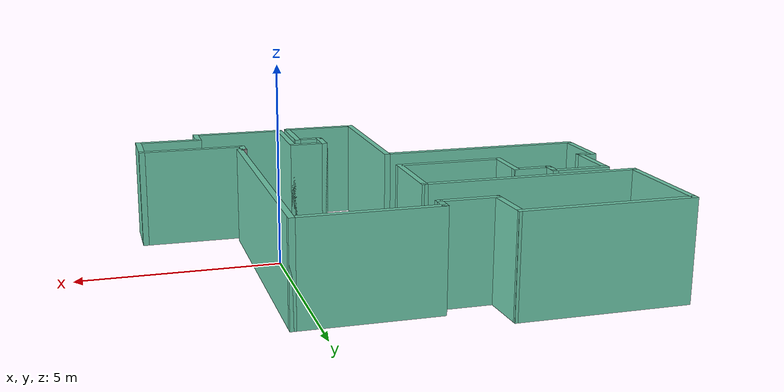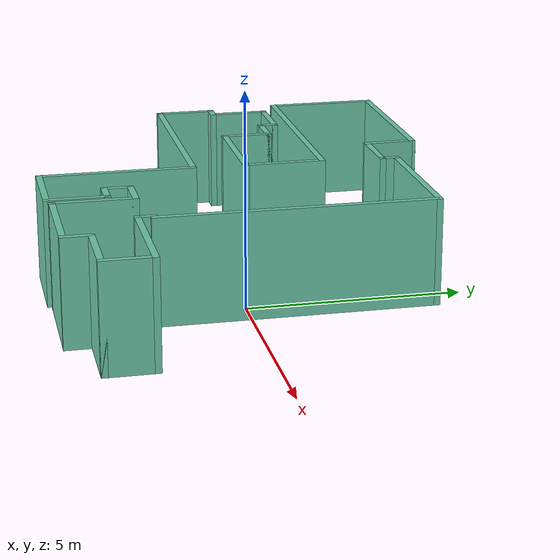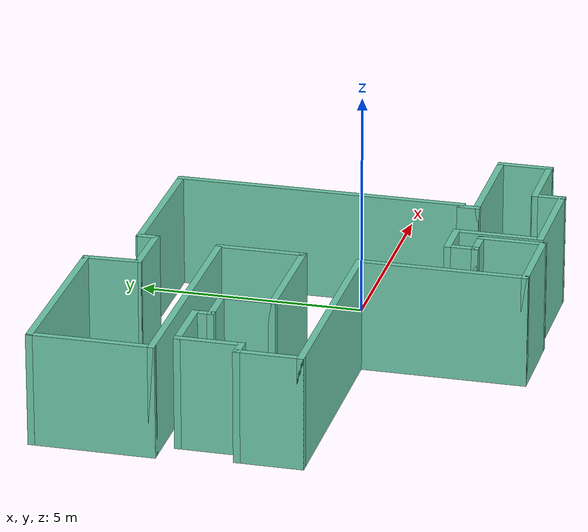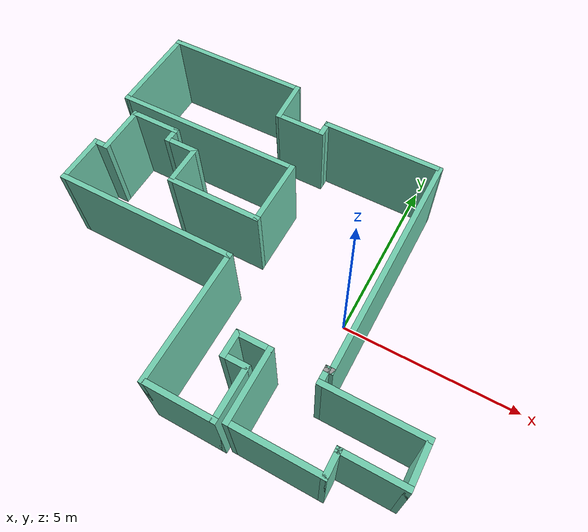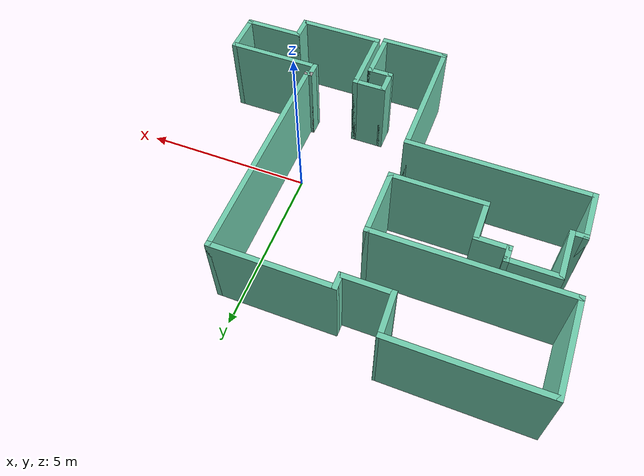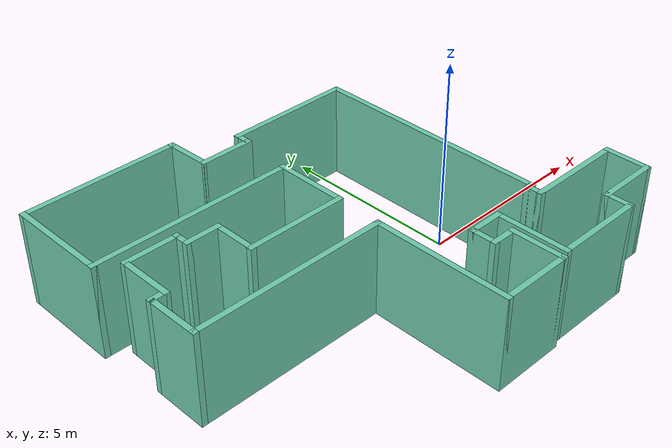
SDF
<?xml version='1.0'?>
<sdf version='1.6'>
  <model name='map_64'>
    <pose frame=''>-2.5752 0.403472 0 0 -0 0</pose>
    <link name='Wall_0'>
      <collision name='Wall_0_Collision'>
        <geometry>
          <box>
            <size>4.25 0.15 2.5</size>
          </box>
        </geometry>
        <pose frame=''>0 0 1.25 0 -0 0</pose>
      </collision>
      <visual name='Wall_0_Visual'>
        <pose frame=''>0 0 1.25 0 -0 0</pose>
        <geometry>
          <box>
            <size>4.25 0.15 2.5</size>
          </box>
        </geometry>
        <material>
          <script>
            <uri>file://media/materials/scripts/gazebo.material</uri>
            <name>Gazebo/Grey</name>
          </script>
          <ambient>0.435294 0.796078 0.67451 1</ambient>
        </material>
        <meta>
          <layer>0</layer>
        </meta>
      </visual>
      <pose frame=''>-3.625 4.64841 0 0 -0 3.14159</pose>
    </link>
    <link name='Wall_1'>
      <collision name='Wall_1_Collision'>
        <geometry>
          <box>
            <size>2.75 0.15 2.5</size>
          </box>
        </geometry>
        <pose frame=''>0 0 1.25 0 -0 0</pose>
      </collision>
      <visual name='Wall_1_Visual'>
        <pose frame=''>0 0 1.25 0 -0 0</pose>
        <geometry>
          <box>
            <size>2.75 0.15 2.5</size>
          </box>
        </geometry>
        <material>
          <script>
            <uri>file://media/materials/scripts/gazebo.material</uri>
            <name>Gazebo/Grey</name>
          </script>
          <ambient>0.435294 0.796078 0.67451 1</ambient>
        </material>
        <meta>
          <layer>0</layer>
        </meta>
      </visual>
      <pose frame=''>-5.675 3.34841 0 0 -0 -1.5708</pose>
    </link>
    <link name='Wall_10'>
      <collision name='Wall_10_Collision'>
        <geometry>
          <box>
            <size>0.5 0.15 2.5</size>
          </box>
        </geometry>
        <pose frame=''>0 0 1.25 0 -0 0</pose>
      </collision>
      <visual name='Wall_10_Visual'>
        <pose frame=''>0 0 1.25 0 -0 0</pose>
        <geometry>
          <box>
            <size>0.5 0.15 2.5</size>
          </box>
        </geometry>
        <material>
          <script>
            <uri>file://media/materials/scripts/gazebo.material</uri>
            <name>Gazebo/Grey</name>
          </script>
          <ambient>0.435294 0.796078 0.67451 1</ambient>
        </material>
        <meta>
          <layer>0</layer>
        </meta>
      </visual>
      <pose frame=''>-5.3 0.298406 0 0 -0 3.14159</pose>
    </link>
    <link name='Wall_11'>
      <collision name='Wall_11_Collision'>
        <geometry>
          <box>
            <size>1.5 0.15 2.5</size>
          </box>
        </geometry>
        <pose frame=''>0 0 1.25 0 -0 0</pose>
      </collision>
      <visual name='Wall_11_Visual'>
        <pose frame=''>0 0 1.25 0 -0 0</pose>
        <geometry>
          <box>
            <size>1.5 0.15 2.5</size>
          </box>
        </geometry>
        <material>
          <script>
            <uri>file://media/materials/scripts/gazebo.material</uri>
            <name>Gazebo/Grey</name>
          </script>
          <ambient>0.435294 0.796078 0.67451 1</ambient>
        </material>
        <meta>
          <layer>0</layer>
        </meta>
      </visual>
      <pose frame=''>-5.475 -0.376594 0 0 -0 -1.5708</pose>
    </link>
    <link name='Wall_12'>
      <collision name='Wall_12_Collision'>
        <geometry>
          <box>
            <size>5.25 0.15 2.5</size>
          </box>
        </geometry>
        <pose frame=''>0 0 1.25 0 -0 0</pose>
      </collision>
      <visual name='Wall_12_Visual'>
        <pose frame=''>0 0 1.25 0 -0 0</pose>
        <geometry>
          <box>
            <size>5.25 0.15 2.5</size>
          </box>
        </geometry>
        <material>
          <script>
            <uri>file://media/materials/scripts/gazebo.material</uri>
            <name>Gazebo/Grey</name>
          </script>
          <ambient>0.435294 0.796078 0.67451 1</ambient>
        </material>
        <meta>
          <layer>0</layer>
        </meta>
      </visual>
      <pose frame=''>-2.925 -1.05159 0 0 -0 0</pose>
    </link>
    <link name='Wall_13'>
      <collision name='Wall_13_Collision'>
        <geometry>
          <box>
            <size>3.75 0.15 2.5</size>
          </box>
        </geometry>
        <pose frame=''>0 0 1.25 0 -0 0</pose>
      </collision>
      <visual name='Wall_13_Visual'>
        <pose frame=''>0 0 1.25 0 -0 0</pose>
        <geometry>
          <box>
            <size>3.75 0.15 2.5</size>
          </box>
        </geometry>
        <material>
          <script>
            <uri>file://media/materials/scripts/gazebo.material</uri>
            <name>Gazebo/Grey</name>
          </script>
          <ambient>0.435294 0.796078 0.67451 1</ambient>
        </material>
        <meta>
          <layer>0</layer>
        </meta>
      </visual>
      <pose frame=''>-0.375 -2.85159 0 0 -0 -1.5708</pose>
    </link>
    <link name='Wall_14'>
      <collision name='Wall_14_Collision'>
        <geometry>
          <box>
            <size>2 0.15 2.5</size>
          </box>
        </geometry>
        <pose frame=''>0 0 1.25 0 -0 0</pose>
      </collision>
      <visual name='Wall_14_Visual'>
        <pose frame=''>0 0 1.25 0 -0 0</pose>
        <geometry>
          <box>
            <size>2 0.15 2.5</size>
          </box>
        </geometry>
        <material>
          <script>
            <uri>file://media/materials/scripts/gazebo.material</uri>
            <name>Gazebo/Grey</name>
          </script>
          <ambient>0.435294 0.796078 0.67451 1</ambient>
        </material>
        <meta>
          <layer>0</layer>
        </meta>
      </visual>
      <pose frame=''>0.55 -4.65159 0 0 -0 0</pose>
    </link>
    <link name='Wall_15'>
      <collision name='Wall_15_Collision'>
        <geometry>
          <box>
            <size>1.5 0.15 2.5</size>
          </box>
        </geometry>
        <pose frame=''>0 0 1.25 0 -0 0</pose>
      </collision>
      <visual name='Wall_15_Visual'>
        <pose frame=''>0 0 1.25 0 -0 0</pose>
        <geometry>
          <box>
            <size>1.5 0.15 2.5</size>
          </box>
        </geometry>
        <material>
          <script>
            <uri>file://media/materials/scripts/gazebo.material</uri>
            <name>Gazebo/Grey</name>
          </script>
          <ambient>0.435294 0.796078 0.67451 1</ambient>
        </material>
        <meta>
          <layer>0</layer>
        </meta>
      </visual>
      <pose frame=''>1.475 -3.97659 0 0 -0 1.5708</pose>
    </link>
    <link name='Wall_16'>
      <collision name='Wall_16_Collision'>
        <geometry>
          <box>
            <size>0.75 0.15 2.5</size>
          </box>
        </geometry>
        <pose frame=''>0 0 1.25 0 -0 0</pose>
      </collision>
      <visual name='Wall_16_Visual'>
        <pose frame=''>0 0 1.25 0 -0 0</pose>
        <geometry>
          <box>
            <size>0.75 0.15 2.5</size>
          </box>
        </geometry>
        <material>
          <script>
            <uri>file://media/materials/scripts/gazebo.material</uri>
            <name>Gazebo/Grey</name>
          </script>
          <ambient>0.435294 0.796078 0.67451 1</ambient>
        </material>
        <meta>
          <layer>0</layer>
        </meta>
      </visual>
      <pose frame=''>1.175 -3.30159 0 0 -0 3.14159</pose>
    </link>
    <link name='Wall_17'>
      <collision name='Wall_17_Collision'>
        <geometry>
          <box>
            <size>0.75 0.15 2.5</size>
          </box>
        </geometry>
        <pose frame=''>0 0 1.25 0 -0 0</pose>
      </collision>
      <visual name='Wall_17_Visual'>
        <pose frame=''>0 0 1.25 0 -0 0</pose>
        <geometry>
          <box>
            <size>0.75 0.15 2.5</size>
          </box>
        </geometry>
        <material>
          <script>
            <uri>file://media/materials/scripts/gazebo.material</uri>
            <name>Gazebo/Grey</name>
          </script>
          <ambient>0.435294 0.796078 0.67451 1</ambient>
        </material>
        <meta>
          <layer>0</layer>
        </meta>
      </visual>
      <pose frame=''>0.875 -3.00159 0 0 -0 1.5708</pose>
    </link>
    <link name='Wall_18'>
      <collision name='Wall_18_Collision'>
        <geometry>
          <box>
            <size>1 0.15 2.5</size>
          </box>
        </geometry>
        <pose frame=''>0 0 1.25 0 -0 0</pose>
      </collision>
      <visual name='Wall_18_Visual'>
        <pose frame=''>0 0 1.25 0 -0 0</pose>
        <geometry>
          <box>
            <size>1 0.15 2.5</size>
          </box>
        </geometry>
        <material>
          <script>
            <uri>file://media/materials/scripts/gazebo.material</uri>
            <name>Gazebo/Grey</name>
          </script>
          <ambient>0.435294 0.796078 0.67451 1</ambient>
        </material>
        <meta>
          <layer>0</layer>
        </meta>
      </visual>
      <pose frame=''>1.3 -2.70159 0 0 -0 0</pose>
    </link>
    <link name='Wall_19'>
      <collision name='Wall_19_Collision'>
        <geometry>
          <box>
            <size>2 0.15 2.5</size>
          </box>
        </geometry>
        <pose frame=''>0 0 1.25 0 -0 0</pose>
      </collision>
      <visual name='Wall_19_Visual'>
        <pose frame=''>0 0 1.25 0 -0 0</pose>
        <geometry>
          <box>
            <size>2 0.15 2.5</size>
          </box>
        </geometry>
        <material>
          <script>
            <uri>file://media/materials/scripts/gazebo.material</uri>
            <name>Gazebo/Grey</name>
          </script>
          <ambient>0.435294 0.796078 0.67451 1</ambient>
        </material>
        <meta>
          <layer>0</layer>
        </meta>
      </visual>
      <pose frame=''>1.725 -3.62659 0 0 -0 -1.5708</pose>
    </link>
    <link name='Wall_2'>
      <collision name='Wall_2_Collision'>
        <geometry>
          <box>
            <size>5.5 0.15 2.5</size>
          </box>
        </geometry>
        <pose frame=''>0 0 1.25 0 -0 0</pose>
      </collision>
      <visual name='Wall_2_Visual'>
        <pose frame=''>0 0 1.25 0 -0 0</pose>
        <geometry>
          <box>
            <size>5.5 0.15 2.5</size>
          </box>
        </geometry>
        <material>
          <script>
            <uri>file://media/materials/scripts/gazebo.material</uri>
            <name>Gazebo/Grey</name>
          </script>
          <ambient>0.435294 0.796078 0.67451 1</ambient>
        </material>
        <meta>
          <layer>0</layer>
        </meta>
      </visual>
      <pose frame=''>-3 2.04841 0 0 -0 0</pose>
    </link>
    <link name='Wall_20'>
      <collision name='Wall_20_Collision'>
        <geometry>
          <box>
            <size>2.5 0.15 2.5</size>
          </box>
        </geometry>
        <pose frame=''>0 0 1.25 0 -0 0</pose>
      </collision>
      <visual name='Wall_20_Visual'>
        <pose frame=''>0 0 1.25 0 -0 0</pose>
        <geometry>
          <box>
            <size>2.5 0.15 2.5</size>
          </box>
        </geometry>
        <material>
          <script>
            <uri>file://media/materials/scripts/gazebo.material</uri>
            <name>Gazebo/Grey</name>
          </script>
          <ambient>0.435294 0.796078 0.67451 1</ambient>
        </material>
        <meta>
          <layer>0</layer>
        </meta>
      </visual>
      <pose frame=''>2.9 -4.55159 0 0 -0 0</pose>
    </link>
    <link name='Wall_21'>
      <collision name='Wall_21_Collision'>
        <geometry>
          <box>
            <size>0.75 0.15 2.5</size>
          </box>
        </geometry>
        <pose frame=''>0 0 1.25 0 -0 0</pose>
      </collision>
      <visual name='Wall_21_Visual'>
        <pose frame=''>0 0 1.25 0 -0 0</pose>
        <geometry>
          <box>
            <size>0.75 0.15 2.5</size>
          </box>
        </geometry>
        <material>
          <script>
            <uri>file://media/materials/scripts/gazebo.material</uri>
            <name>Gazebo/Grey</name>
          </script>
          <ambient>0.435294 0.796078 0.67451 1</ambient>
        </material>
        <meta>
          <layer>0</layer>
        </meta>
      </visual>
      <pose frame=''>4.075 -4.25159 0 0 -0 1.5708</pose>
    </link>
    <link name='Wall_22'>
      <collision name='Wall_22_Collision'>
        <geometry>
          <box>
            <size>1.75 0.15 2.5</size>
          </box>
        </geometry>
        <pose frame=''>0 0 1.25 0 -0 0</pose>
      </collision>
      <visual name='Wall_22_Visual'>
        <pose frame=''>0 0 1.25 0 -0 0</pose>
        <geometry>
          <box>
            <size>1.75 0.15 2.5</size>
          </box>
        </geometry>
        <material>
          <script>
            <uri>file://media/materials/scripts/gazebo.material</uri>
            <name>Gazebo/Grey</name>
          </script>
          <ambient>0.435294 0.796078 0.67451 1</ambient>
        </material>
        <meta>
          <layer>0</layer>
        </meta>
      </visual>
      <pose frame=''>4.875 -3.95159 0 0 -0 0</pose>
    </link>
    <link name='Wall_25'>
      <collision name='Wall_25_Collision'>
        <geometry>
          <box>
            <size>1.25 0.15 2.5</size>
          </box>
        </geometry>
        <pose frame=''>0 0 1.25 0 -0 0</pose>
      </collision>
      <visual name='Wall_25_Visual'>
        <pose frame=''>0 0 1.25 0 -0 0</pose>
        <geometry>
          <box>
            <size>1.25 0.15 2.5</size>
          </box>
        </geometry>
        <material>
          <script>
            <uri>file://media/materials/scripts/gazebo.material</uri>
            <name>Gazebo/Grey</name>
          </script>
          <ambient>0.435294 0.796078 0.67451 1</ambient>
        </material>
        <meta>
          <layer>0</layer>
        </meta>
      </visual>
      <pose frame=''>5.675 -3.40159 0 0 -0 1.5708</pose>
    </link>
    <link name='Wall_26'>
      <collision name='Wall_26_Collision'>
        <geometry>
          <box>
            <size>2.75 0.15 2.5</size>
          </box>
        </geometry>
        <pose frame=''>0 0 1.25 0 -0 0</pose>
      </collision>
      <visual name='Wall_26_Visual'>
        <pose frame=''>0 0 1.25 0 -0 0</pose>
        <geometry>
          <box>
            <size>2.75 0.15 2.5</size>
          </box>
        </geometry>
        <material>
          <script>
            <uri>file://media/materials/scripts/gazebo.material</uri>
            <name>Gazebo/Grey</name>
          </script>
          <ambient>0.435294 0.796078 0.67451 1</ambient>
        </material>
        <meta>
          <layer>0</layer>
        </meta>
      </visual>
      <pose frame=''>4.375 -2.85159 0 0 -0 3.14159</pose>
    </link>
    <link name='Wall_29'>
      <collision name='Wall_29_Collision'>
        <geometry>
          <box>
            <size>0.5 0.15 2.5</size>
          </box>
        </geometry>
        <pose frame=''>0 0 1.25 0 -0 0</pose>
      </collision>
      <visual name='Wall_29_Visual'>
        <pose frame=''>0 0 1.25 0 -0 0</pose>
        <geometry>
          <box>
            <size>0.5 0.15 2.5</size>
          </box>
        </geometry>
        <material>
          <script>
            <uri>file://media/materials/scripts/gazebo.material</uri>
            <name>Gazebo/Grey</name>
          </script>
          <ambient>0.435294 0.796078 0.67451 1</ambient>
        </material>
        <meta>
          <layer>0</layer>
        </meta>
      </visual>
      <pose frame=''>3.075 -2.67659 0 0 -0 1.5708</pose>
    </link>
    <link name='Wall_3'>
      <collision name='Wall_3_Collision'>
        <geometry>
          <box>
            <size>2 0.15 2.5</size>
          </box>
        </geometry>
        <pose frame=''>0 0 1.25 0 -0 0</pose>
      </collision>
      <visual name='Wall_3_Visual'>
        <pose frame=''>0 0 1.25 0 -0 0</pose>
        <geometry>
          <box>
            <size>2 0.15 2.5</size>
          </box>
        </geometry>
        <material>
          <script>
            <uri>file://media/materials/scripts/gazebo.material</uri>
            <name>Gazebo/Grey</name>
          </script>
          <ambient>0.435294 0.796078 0.67451 1</ambient>
        </material>
        <meta>
          <layer>0</layer>
        </meta>
      </visual>
      <pose frame=''>-0.325 1.12341 0 0 -0 -1.5708</pose>
    </link>
    <link name='Wall_30'>
      <collision name='Wall_30_Collision'>
        <geometry>
          <box>
            <size>0.25 0.15 2.5</size>
          </box>
        </geometry>
        <pose frame=''>0 0 1.25 0 -0 0</pose>
      </collision>
      <visual name='Wall_30_Visual'>
        <pose frame=''>0 0 1.25 0 -0 0</pose>
        <geometry>
          <box>
            <size>0.25 0.15 2.5</size>
          </box>
        </geometry>
        <material>
          <script>
            <uri>file://media/materials/scripts/gazebo.material</uri>
            <name>Gazebo/Grey</name>
          </script>
          <ambient>1 1 1 1</ambient>
        </material>
        <meta>
          <layer>0</layer>
        </meta>
      </visual>
      <pose frame=''>3.125 -2.50159 0 0 -0 0</pose>
    </link>
    <link name='Wall_31'>
      <collision name='Wall_31_Collision'>
        <geometry>
          <box>
            <size>6.5 0.15 2.5</size>
          </box>
        </geometry>
        <pose frame=''>0 0 1.25 0 -0 0</pose>
      </collision>
      <visual name='Wall_31_Visual'>
        <pose frame=''>0 0 1.25 0 -0 0</pose>
        <geometry>
          <box>
            <size>6.5 0.15 2.5</size>
          </box>
        </geometry>
        <material>
          <script>
            <uri>file://media/materials/scripts/gazebo.material</uri>
            <name>Gazebo/Grey</name>
          </script>
          <ambient>0.435294 0.796078 0.67451 1</ambient>
        </material>
        <meta>
          <layer>0</layer>
        </meta>
      </visual>
      <pose frame=''>3.175 0.673406 0 0 -0 1.5708</pose>
    </link>
    <link name='Wall_32'>
      <collision name='Wall_32_Collision'>
        <geometry>
          <box>
            <size>3.5 0.15 2.5</size>
          </box>
        </geometry>
        <pose frame=''>0 0 1.25 0 -0 0</pose>
      </collision>
      <visual name='Wall_32_Visual'>
        <pose frame=''>0 0 1.25 0 -0 0</pose>
        <geometry>
          <box>
            <size>3.5 0.15 2.5</size>
          </box>
        </geometry>
        <material>
          <script>
            <uri>file://media/materials/scripts/gazebo.material</uri>
            <name>Gazebo/Grey</name>
          </script>
          <ambient>0.435294 0.796078 0.67451 1</ambient>
        </material>
        <meta>
          <layer>0</layer>
        </meta>
      </visual>
      <pose frame=''>1.5 3.84841 0 0 -0 3.14159</pose>
    </link>
    <link name='Wall_37'>
      <collision name='Wall_37_Collision'>
        <geometry>
          <box>
            <size>0.5 0.15 2.5</size>
          </box>
        </geometry>
        <pose frame=''>0 0 1.25 0 -0 0</pose>
      </collision>
      <visual name='Wall_37_Visual'>
        <pose frame=''>0 0 1.25 0 -0 0</pose>
        <geometry>
          <box>
            <size>0.5 0.15 2.5</size>
          </box>
        </geometry>
        <material>
          <script>
            <uri>file://media/materials/scripts/gazebo.material</uri>
            <name>Gazebo/Grey</name>
          </script>
          <ambient>0.435294 0.796078 0.67451 1</ambient>
        </material>
        <meta>
          <layer>0</layer>
        </meta>
      </visual>
      <pose frame=''>-0.175 3.67341 0 0 -0 -1.5708</pose>
    </link>
    <link name='Wall_38'>
      <collision name='Wall_38_Collision'>
        <geometry>
          <box>
            <size>1.5 0.15 2.5</size>
          </box>
        </geometry>
        <pose frame=''>0 0 1.25 0 -0 0</pose>
      </collision>
      <visual name='Wall_38_Visual'>
        <pose frame=''>0 0 1.25 0 -0 0</pose>
        <geometry>
          <box>
            <size>1.5 0.15 2.5</size>
          </box>
        </geometry>
        <material>
          <script>
            <uri>file://media/materials/scripts/gazebo.material</uri>
            <name>Gazebo/Grey</name>
          </script>
          <ambient>0.435294 0.796078 0.67451 1</ambient>
        </material>
        <meta>
          <layer>0</layer>
        </meta>
      </visual>
      <pose frame=''>-0.85 3.49841 0 0 -0 3.14159</pose>
    </link>
    <link name='Wall_39'>
      <collision name='Wall_39_Collision'>
        <geometry>
          <box>
            <size>1.30109 0.15 2.5</size>
          </box>
        </geometry>
        <pose frame=''>0 0 1.25 0 -0 0</pose>
      </collision>
      <visual name='Wall_39_Visual'>
        <pose frame=''>0 0 1.25 0 -0 0</pose>
        <geometry>
          <box>
            <size>1.30109 0.15 2.5</size>
          </box>
        </geometry>
        <material>
          <script>
            <uri>file://media/materials/scripts/gazebo.material</uri>
            <name>Gazebo/Grey</name>
          </script>
          <ambient>0.435294 0.796078 0.67451 1</ambient>
        </material>
        <meta>
          <layer>0</layer>
        </meta>
      </visual>
      <pose frame=''>-1.55 4.07341 0 0 -0 1.61425</pose>
    </link>
    <link name='Wall_4'>
      <collision name='Wall_4_Collision'>
        <geometry>
          <box>
            <size>2.75 0.15 2.5</size>
          </box>
        </geometry>
        <pose frame=''>0 0 1.25 0 -0 0</pose>
      </collision>
      <visual name='Wall_4_Visual'>
        <pose frame=''>0 0 1.25 0 -0 0</pose>
        <geometry>
          <box>
            <size>2.75 0.15 2.5</size>
          </box>
        </geometry>
        <material>
          <script>
            <uri>file://media/materials/scripts/gazebo.material</uri>
            <name>Gazebo/Grey</name>
          </script>
          <ambient>0.435294 0.796078 0.67451 1</ambient>
        </material>
        <meta>
          <layer>0</layer>
        </meta>
      </visual>
      <pose frame=''>-1.625 0.198406 0 0 -0 3.14159</pose>
    </link>
    <link name='Wall_5'>
      <collision name='Wall_5_Collision'>
        <geometry>
          <box>
            <size>1.25 0.15 2.5</size>
          </box>
        </geometry>
        <pose frame=''>0 0 1.25 0 -0 0</pose>
      </collision>
      <visual name='Wall_5_Visual'>
        <pose frame=''>0 0 1.25 0 -0 0</pose>
        <geometry>
          <box>
            <size>1.25 0.15 2.5</size>
          </box>
        </geometry>
        <material>
          <script>
            <uri>file://media/materials/scripts/gazebo.material</uri>
            <name>Gazebo/Grey</name>
          </script>
          <ambient>0.435294 0.796078 0.67451 1</ambient>
        </material>
        <meta>
          <layer>0</layer>
        </meta>
      </visual>
      <pose frame=''>-2.925 0.748406 0 0 -0 1.5708</pose>
    </link>
    <link name='Wall_6'>
      <collision name='Wall_6_Collision'>
        <geometry>
          <box>
            <size>1 0.15 2.5</size>
          </box>
        </geometry>
        <pose frame=''>0 0 1.25 0 -0 0</pose>
      </collision>
      <visual name='Wall_6_Visual'>
        <pose frame=''>0 0 1.25 0 -0 0</pose>
        <geometry>
          <box>
            <size>1 0.15 2.5</size>
          </box>
        </geometry>
        <material>
          <script>
            <uri>file://media/materials/scripts/gazebo.material</uri>
            <name>Gazebo/Grey</name>
          </script>
          <ambient>0.435294 0.796078 0.67451 1</ambient>
        </material>
        <meta>
          <layer>0</layer>
        </meta>
      </visual>
      <pose frame=''>-3.35 1.29841 0 0 -0 3.14159</pose>
    </link>
    <link name='Wall_7'>
      <collision name='Wall_7_Collision'>
        <geometry>
          <box>
            <size>0.5 0.15 2.5</size>
          </box>
        </geometry>
        <pose frame=''>0 0 1.25 0 -0 0</pose>
      </collision>
      <visual name='Wall_7_Visual'>
        <pose frame=''>0 0 1.25 0 -0 0</pose>
        <geometry>
          <box>
            <size>0.5 0.15 2.5</size>
          </box>
        </geometry>
        <material>
          <script>
            <uri>file://media/materials/scripts/gazebo.material</uri>
            <name>Gazebo/Grey</name>
          </script>
          <ambient>0.435294 0.796078 0.67451 1</ambient>
        </material>
        <meta>
          <layer>0</layer>
        </meta>
      </visual>
      <pose frame=''>-3.775 1.47341 0 0 -0 1.5708</pose>
    </link>
    <link name='Wall_8'>
      <collision name='Wall_8_Collision'>
        <geometry>
          <box>
            <size>1.5 0.15 2.5</size>
          </box>
        </geometry>
        <pose frame=''>0 0 1.25 0 -0 0</pose>
      </collision>
      <visual name='Wall_8_Visual'>
        <pose frame=''>0 0 1.25 0 -0 0</pose>
        <geometry>
          <box>
            <size>1.5 0.15 2.5</size>
          </box>
        </geometry>
        <material>
          <script>
            <uri>file://media/materials/scripts/gazebo.material</uri>
            <name>Gazebo/Grey</name>
          </script>
          <ambient>0.435294 0.796078 0.67451 1</ambient>
        </material>
        <meta>
          <layer>0</layer>
        </meta>
      </visual>
      <pose frame=''>-4.45 1.64841 0 0 -0 3.14159</pose>
    </link>
    <link name='Wall_9'>
      <collision name='Wall_9_Collision'>
        <geometry>
          <box>
            <size>1.5 0.15 2.5</size>
          </box>
        </geometry>
        <pose frame=''>0 0 1.25 0 -0 0</pose>
      </collision>
      <visual name='Wall_9_Visual'>
        <pose frame=''>0 0 1.25 0 -0 0</pose>
        <geometry>
          <box>
            <size>1.5 0.15 2.5</size>
          </box>
        </geometry>
        <material>
          <script>
            <uri>file://media/materials/scripts/gazebo.material</uri>
            <name>Gazebo/Grey</name>
          </script>
          <ambient>0.435294 0.796078 0.67451 1</ambient>
        </material>
        <meta>
          <layer>0</layer>
        </meta>
      </visual>
      <pose frame=''>-5.125 0.973406 0 0 -0 -1.5708</pose>
    </link>
    <static>1</static>
  </model>
</sdf>
